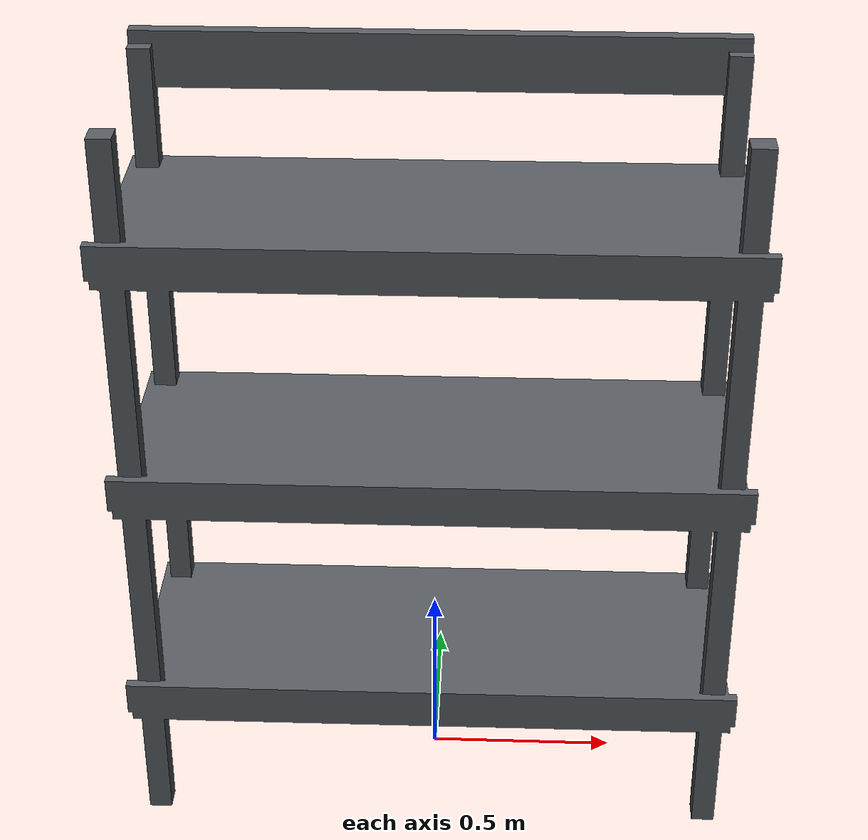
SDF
<?xml version='1.0' encoding='utf-8'?>
<sdf version="1.6">
  <model name="storage_shelf">
    <static>true</static>
    <link name="link">
      <visual name="detailed_mesh_visual">
        <geometry>
          <mesh>
            <uri>model://storage_shelf/meshes/storage_shelf.stl</uri>
          </mesh>
        </geometry>
      <material><ambient>0.34 0.36 0.38 1</ambient><diffuse>0.34 0.36 0.38 1</diffuse><specular>0.08 0.08 0.08 1</specular></material></visual>
      <collision name="post1_collision">
        <pose>-0.75 -0.28 1.0 0 0 0</pose>
        <geometry>
          <box>
            <size>0.07 0.07 2.0</size>
          </box>
        </geometry>
      </collision>
      <collision name="post2_collision">
        <pose>0.75 -0.28 1.0 0 0 0</pose>
        <geometry>
          <box>
            <size>0.07 0.07 2.0</size>
          </box>
        </geometry>
      </collision>
      <collision name="post3_collision">
        <pose>-0.75 0.28 1.0 0 0 0</pose>
        <geometry>
          <box>
            <size>0.07 0.07 2.0</size>
          </box>
        </geometry>
      </collision>
      <collision name="post4_collision">
        <pose>0.75 0.28 1.0 0 0 0</pose>
        <geometry>
          <box>
            <size>0.07 0.07 2.0</size>
          </box>
        </geometry>
      </collision>
      <collision name="shelf1_collision">
        <pose>0 0 0.35 0 0 0</pose>
        <geometry>
          <box>
            <size>1.6 0.65 0.06</size>
          </box>
        </geometry>
      </collision>
      <collision name="shelf2_collision">
        <pose>0 0 1.0 0 0 0</pose>
        <geometry>
          <box>
            <size>1.6 0.65 0.06</size>
          </box>
        </geometry>
      </collision>
      <collision name="shelf3_collision">
        <pose>0 0 1.65 0 0 0</pose>
        <geometry>
          <box>
            <size>1.6 0.65 0.06</size>
          </box>
        </geometry>
      </collision>
    </link>
  </model>
</sdf>
